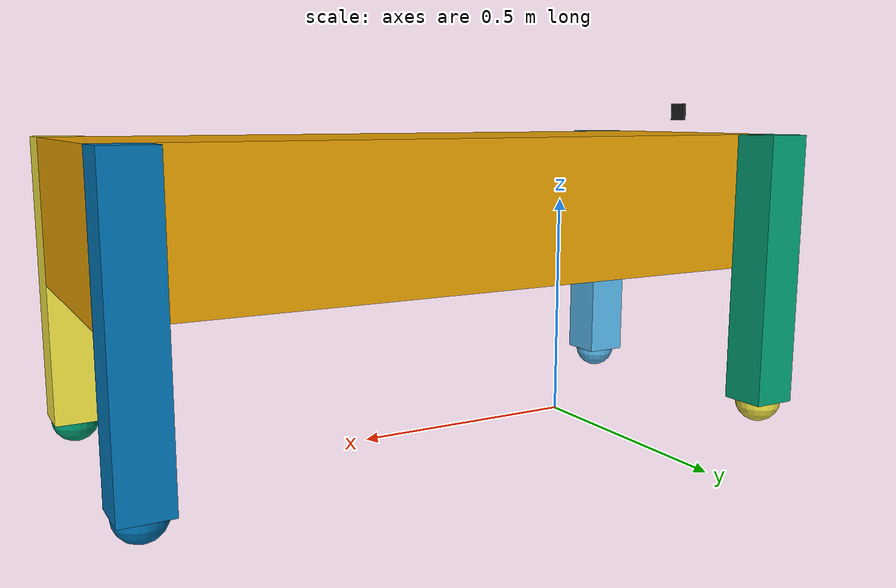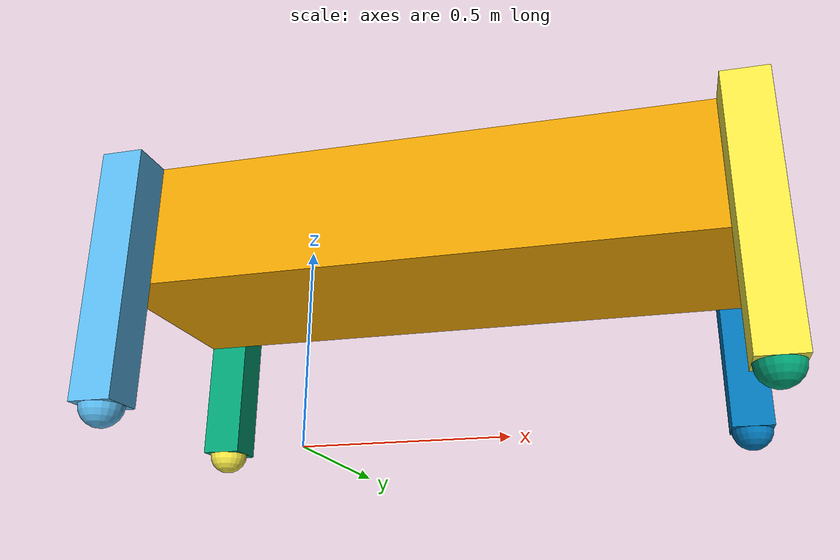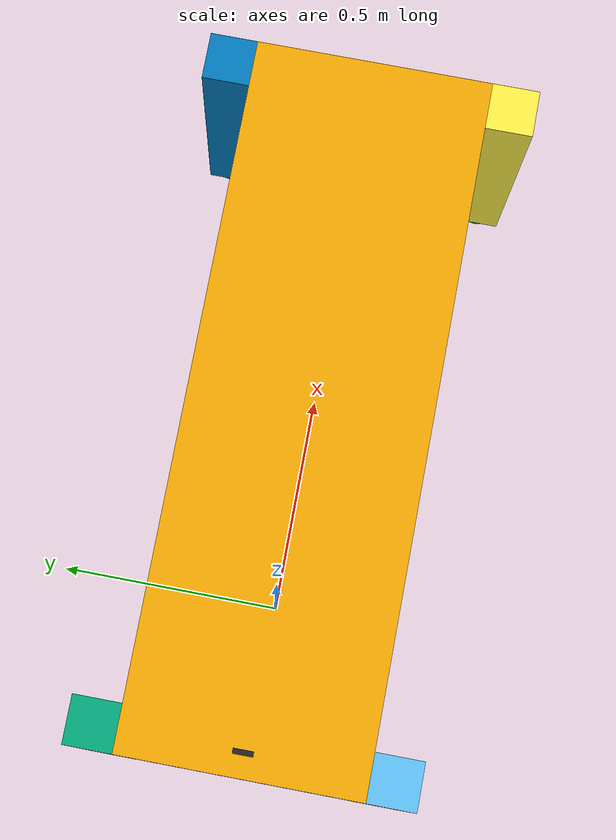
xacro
<?xml version="1.0"?>

<robot name="zwmvp" xmlns:xacro="http://www.ros.org/wiki/xacro">

  <!-- Import all Gazebo-customization elements, including Gazebo colors -->
  <xacro:include filename="$(find zwmvp_description)/urdf/zwmvp.gazebo" />

	<!-- body -->
	<xacro:include filename="$(find zwmvp_description)/urdf/zwmvp_body.xacro" />
	<!-- let -->
	<xacro:include filename="$(find zwmvp_description)/urdf/zwmvp_leg.xacro" />
	<!-- foot -->
	<xacro:include filename="$(find zwmvp_description)/urdf/zwmvp_foot.xacro" />
	<!-- shoe -->
	<xacro:include filename="$(find zwmvp_description)/urdf/zwmvp_shoe.xacro" />
	<!-- camera -->
	<xacro:include filename="$(find zwmvp_description)/urdf/zwmvp_camera.xacro" />
	<!-- transmission -->
	<xacro:include filename="$(find zwmvp_description)/urdf/zwmvp_transmission.xacro" />

  <xacro:usb_camera prefix="camera"/>

</robot>

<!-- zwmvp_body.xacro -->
<robot name="zwmvp" xmlns:xacro="http://www.ros.org/wiki/xacro">

  <xacro:property name="body_box_size"	value="1.5 0.5 0.3"/>
  <xacro:property name="damping" 	value="0.7"/>

  <link name="body">
    <inertial>
      <mass value="5"/>
      <origin rpy="0 0 0" xyz="0 0 0"/>
      <inertia ixx="0.166667" ixy="0" ixz="0" iyy="0.166667" iyz="0" izz="0.166667"/>
    </inertial>
    <collision name="pig_dog__collision">
      <origin rpy="0 0 0" xyz="0.35 0   0.5"/>
      <geometry>
        <box size="${body_box_size}"/>
      </geometry>
    </collision>
    <visual name="pig_dog__visual">
      <origin rpy="0 0 0" xyz="0.35 0   0.5"/>
      <geometry>
        <box size="${body_box_size}"/>
      </geometry>
    </visual>
  </link>

  <joint name="body_lf_joint" type="continuous">
    <parent link="body"/>
    <child link="left_front_leg"/>
    <origin rpy="0 0 0" xyz="-0.35 -0.3   0.65"/>
    <axis xyz="0 1 0"/>
    <dynamics damping="${damping}"/>
  </joint>

  <joint name="body_rf_joint" type="continuous">
    <parent link="body"/>
    <child link="right_front_leg"/>
    <origin rpy="0 0 0" xyz="-0.35  0.3   0.65"/>
    <axis xyz="0 -1  0"/>
    <dynamics damping="${damping}"/>
  </joint>

  <joint name="body_lb_joint" type="continuous">
    <parent link="body"/>
    <child link="left_back_leg"/>
    <origin rpy="0 0 0" xyz="1.05 -0.3   0.65"/>
    <axis xyz="0 1 0"/>
    <dynamics damping="${damping}"/>
  </joint>

  <joint name="body_rb_joint" type="continuous">
    <parent link="body"/>
    <child link="right_back_leg"/>
    <origin rpy="0 0 0" xyz="1.05 0.3  0.65"/>
    <axis xyz="0 -1  0"/>
    <dynamics damping="${damping}"/>
  </joint>

</robot>

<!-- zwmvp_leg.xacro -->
<robot name="zwmvp" xmlns:xacro="http://www.ros.org/wiki/xacro">

  <xacro:property name="leg_mass" value="0.5"/>
  <xacro:property name="leg_origin_xyz" value="0  0  -0.3"/>
  <xacro:property name="leg_box_size"	value="0.1 0.1 0.6"/>
  <xacro:property name="joint_foot_origin_xyz" value="0   0  -0.6"/>

  <!-- link -->
  <link name="left_front_leg">
    <inertial>
      <mass value="${leg_mass}"/>
      <origin rpy="0 0 0" xyz="0 0 0"/>
      <inertia ixx="0.166667" ixy="0" ixz="0" iyy="0.166667" iyz="0" izz="0.166667"/>
    </inertial>
    <collision name="zwmvp__collision">
      <origin rpy="0 0 0" xyz="${leg_origin_xyz}"/>
      <geometry>
        <box size="${leg_box_size}"/>
      </geometry>
    </collision>
    <visual name="zwmvp__visual">
      <origin rpy="0 0 0" xyz="${leg_origin_xyz}"/>
      <geometry>
        <box size="${leg_box_size}"/>
      </geometry>
    </visual>
  </link>
  <link name="right_front_leg">
    <inertial>
      <mass value="${leg_mass}"/>
      <origin rpy="0 0 0" xyz="0 0 0"/>
      <inertia ixx="0.166667" ixy="0" ixz="0" iyy="0.166667" iyz="0" izz="0.166667"/>
    </inertial>
    <collision name="zwmvp__collision">
      <origin rpy="0 0 0" xyz="${leg_origin_xyz}"/>
      <geometry>
        <box size="${leg_box_size}"/>
      </geometry>
    </collision>
    <visual name="zwmvp__visual">
      <origin rpy="0 0 0" xyz="${leg_origin_xyz}"/>
      <geometry>
        <box size="${leg_box_size}"/>
      </geometry>
    </visual>
  </link>
  <link name="left_back_leg">
    <inertial>
      <mass value="${leg_mass}"/>
      <origin rpy="0 0 0" xyz="0 0 0"/>
      <inertia ixx="0.166667" ixy="0" ixz="0" iyy="0.166667" iyz="0" izz="0.166667"/>
    </inertial>
    <collision name="zwmvp__collision">
      <origin rpy="0 0 0" xyz="${leg_origin_xyz}"/>
      <geometry>
        <box size="${leg_box_size}"/>
      </geometry>
    </collision>
    <visual name="zwmvp__visual">
      <origin rpy="0 0 0" xyz="${leg_origin_xyz}"/>
      <geometry>
        <box size="${leg_box_size}"/>
      </geometry>
    </visual>
  </link>
  <link name="right_back_leg">
    <inertial>
      <mass value="${leg_mass}"/>
      <origin rpy="0 0 0" xyz="0 0 0"/>
      <inertia ixx="0.166667" ixy="0" ixz="0" iyy="0.166667" iyz="0" izz="0.166667"/>
    </inertial>
    <collision name="zwmvp__collision">
      <origin rpy="0 0 0" xyz="${leg_origin_xyz}"/>
      <geometry>
        <box size="${leg_box_size}"/>
      </geometry>
    </collision>
    <visual name="zwmvp__visual">
      <origin rpy="0 0 0" xyz="${leg_origin_xyz}"/>
      <geometry>
        <box size="${leg_box_size}"/>
      </geometry>
    </visual>
  </link>

  <!-- joint -->
  <joint name="lf_leg_foot_joint" type="prismatic">
    <parent link="left_front_leg"/>
    <child link="left_front_foot"/>
    <origin rpy="0 0 0" xyz="${joint_foot_origin_xyz}"/>
    <axis xyz="0  0 -1"/>
    <limit effort="1e10" lower="0" upper="0.5" velocity="10"/>
  </joint>

  <joint name="rf_leg_foot_joint" type="prismatic">
    <parent link="right_front_leg"/>
    <child link="right_front_foot"/>
    <origin rpy="0 0 0" xyz="${joint_foot_origin_xyz}"/>
    <axis xyz="0  0 -1"/>
    <limit effort="1e10" lower="0" upper="0.5" velocity="10"/>
  </joint>

  <joint name="lb_leg_foot_joint" type="prismatic">
    <parent link="left_back_leg"/>
    <child link="left_back_foot"/>
    <origin rpy="0 0 0" xyz="${joint_foot_origin_xyz}"/>
    <axis xyz="0  0 -1"/>
    <limit effort="1e10" lower="0" upper="0.5" velocity="10"/>
  </joint>

  <joint name="rb_leg_foot_joint" type="prismatic">
    <parent link="right_back_leg"/>
    <child link="right_back_foot"/>
    <origin rpy="0 0 0" xyz="${joint_foot_origin_xyz}"/>
    <axis xyz="0  0 -1"/>
    <limit effort="1e10" lower="0" upper="0.5" velocity="10"/>
  </joint>

</robot>

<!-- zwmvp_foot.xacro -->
<robot name="zwmvp" xmlns:xacro="http://www.ros.org/wiki/xacro">

  <xacro:property name="foot_mass" value="0.2"/>
  <xacro:property name="foot_origin_xyz" value="0  0  0.25"/>
  <xacro:property name="foot_cylinder_length" value="0.5"/>
  <xacro:property name="foot_cylinder_radius" value="0.025"/>

  <!-- link -->
  <link name="left_front_foot">
    <inertial>
      <mass value="${foot_mass}"/>
      <origin rpy="0 0 0" xyz="0 0 0"/>
      <inertia ixx="0.145833" ixy="0" ixz="0" iyy="0.145833" iyz="0" izz="0.125"/>
    </inertial>
    <collision name="zwmvp__collision">
      <origin rpy="0 0 0" xyz="${foot_origin_xyz}"/>
      <geometry>
        <cylinder length="${foot_cylinder_length}" radius="${foot_cylinder_radius}"/>
      </geometry>
    </collision>
    <visual name="zwmvp__visual">
      <origin rpy="0 0 0" xyz="${foot_origin_xyz}"/>
      <geometry>
        <cylinder length="${foot_cylinder_length}" radius="${foot_cylinder_radius}"/>
      </geometry>
    </visual>
  </link>
  <link name="right_front_foot">
    <inertial>
      <mass value="${foot_mass}"/>
      <origin rpy="0 0 0" xyz="0 0 0"/>
      <inertia ixx="0.145833" ixy="0" ixz="0" iyy="0.145833" iyz="0" izz="0.125"/>
    </inertial>
    <collision name="zwmvp__collision">
      <origin rpy="0 0 0" xyz="${foot_origin_xyz}"/>
      <geometry>
        <cylinder length="${foot_cylinder_length}" radius="${foot_cylinder_radius}"/>
      </geometry>
    </collision>
    <visual name="zwmvp__visual">
      <origin rpy="0 0 0" xyz="${foot_origin_xyz}"/>
      <geometry>
        <cylinder length="${foot_cylinder_length}" radius="${foot_cylinder_radius}"/>
      </geometry>
    </visual>
  </link>
  <link name="left_back_foot">
    <inertial>
      <mass value="${foot_mass}"/>
      <origin rpy="0 0 0" xyz="0 0 0"/>
      <inertia ixx="0.145833" ixy="0" ixz="0" iyy="0.145833" iyz="0" izz="0.125"/>
    </inertial>
    <collision name="zwmvp__collision">
      <origin rpy="0 0 0" xyz="${foot_origin_xyz}"/>
      <geometry>
        <cylinder length="${foot_cylinder_length}" radius="${foot_cylinder_radius}"/>
      </geometry>
    </collision>
    <visual name="zwmvp__visual">
      <origin rpy="0 0 0" xyz="${foot_origin_xyz}"/>
      <geometry>
        <cylinder length="${foot_cylinder_length}" radius="${foot_cylinder_radius}"/>
      </geometry>
    </visual>
  </link>
  <link name="right_back_foot">
    <inertial>
      <mass value="${foot_mass}"/>
      <origin rpy="0 0 0" xyz="0 0 0"/>
      <inertia ixx="0.145833" ixy="0" ixz="0" iyy="0.145833" iyz="0" izz="0.125"/>
    </inertial>
    <collision name="zwmvp__collision">
      <origin rpy="0 0 0" xyz="${foot_origin_xyz}"/>
      <geometry>
        <cylinder length="${foot_cylinder_length}" radius="${foot_cylinder_radius}"/>
      </geometry>
    </collision>
    <visual name="zwmvp__visual">
      <origin rpy="0 0 0" xyz="${foot_origin_xyz}"/>
      <geometry>
        <cylinder length="${foot_cylinder_length}" radius="${foot_cylinder_radius}"/>
      </geometry>
    </visual>
  </link>

  <!-- joint -->
  <joint name="lf_foot_shoe_joint" type="fixed">
    <parent link="left_front_foot"/>
    <child link="left_front_shoe"/>
    <origin rpy="0 0 0" xyz="0   0  0"/>
    <axis xyz="0 0 1"/>
  </joint>

  <joint name="rf_foot_shoe_joint" type="fixed">
    <parent link="right_front_foot"/>
    <child link="right_front_shoe"/>
    <origin rpy="0 0 0" xyz="0   0  0"/>
    <axis xyz="0 0 1"/>
  </joint>

  <joint name="lb_foot_shoe_joint" type="fixed">
    <parent link="left_back_foot"/>
    <child link="left_back_shoe"/>
    <origin rpy="0 0 0" xyz="0  0  0"/>
    <axis xyz="0 0 1"/>
  </joint>

  <joint name="rb_foot_shoe_joint" type="fixed">
    <parent link="right_back_foot"/>
    <child link="right_back_shoe"/>
    <origin rpy="0 0 0" xyz="0   0  0"/>
    <axis xyz="0 0 1"/>
  </joint>

</robot>

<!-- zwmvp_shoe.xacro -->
<robot name="zwmvp" xmlns:xacro="http://www.ros.org/wiki/xacro">

  <xacro:property name="shoe_mass" value="0.1"/>
  <xacro:property name="shoe_radius"  value="0.05"/>

  <link name="left_front_shoe">
    <inertial>
      <mass value="${shoe_mass}"/>
      <origin rpy="0 0 0" xyz="0 0 0"/>
      <inertia ixx="0.1" ixy="0" ixz="0" iyy="0.1" iyz="0" izz="0.1"/>
    </inertial>
    <collision name="zwmvp__collision">
      <origin rpy="0 0 0" xyz="0   0   0"/>
      <geometry>
        <sphere radius="${shoe_radius}"/>
      </geometry>
    </collision>
    <visual name="zwmvp__visual">
      <origin rpy="0 0 0" xyz="0   0   0"/>
      <geometry>
        <sphere radius="${shoe_radius}"/>
      </geometry>
    </visual>
  </link>

  <link name="left_back_shoe">
    <inertial>
      <mass value="${shoe_mass}"/>
      <origin rpy="0 0 0" xyz="0 0 0"/>
      <inertia ixx="0.1" ixy="0" ixz="0" iyy="0.1" iyz="0" izz="0.1"/>
    </inertial>
    <collision name="zwmvp__collision">
      <origin rpy="0 0 0" xyz="0   0   0"/>
      <geometry>
        <sphere radius="${shoe_radius}"/>
      </geometry>
    </collision>
    <visual name="zwmvp__visual">
      <origin rpy="0 0 0" xyz="0   0   0"/>
      <geometry>
        <sphere radius="${shoe_radius}"/>
      </geometry>
    </visual>
  </link>

  <link name="right_front_shoe">
    <inertial>
      <mass value="${shoe_mass}"/>
      <origin rpy="0 0 0" xyz="0 0 0"/>
      <inertia ixx="0.1" ixy="0" ixz="0" iyy="0.1" iyz="0" izz="0.1"/>
    </inertial>
    <collision name="zwmvp__collision">
      <origin rpy="0 0 0" xyz="0   0   0"/>
      <geometry>
        <sphere radius="${shoe_radius}"/>
      </geometry>
    </collision>
    <visual name="zwmvp__visual">
      <origin rpy="0 0 0" xyz="0   0   0"/>
      <geometry>
        <sphere radius="${shoe_radius}"/>
      </geometry>
    </visual>
  </link>

  <link name="right_back_shoe">
    <inertial>
      <mass value="${shoe_mass}"/>
      <origin rpy="0 0 0" xyz="0 0 0"/>
      <inertia ixx="0.1" ixy="0" ixz="0" iyy="0.1" iyz="0" izz="0.1"/>
    </inertial>
    <collision name="zwmvp__collision">
      <origin rpy="0 0 0" xyz="0   0   0"/>
      <geometry>
        <sphere radius="${shoe_radius}"/>
      </geometry>
    </collision>
    <visual name="zwmvp__visual">
      <origin rpy="0 0 0" xyz="0   0   0"/>
      <geometry>
        <sphere radius="${shoe_radius}"/>
      </geometry>
    </visual>
  </link>

</robot>

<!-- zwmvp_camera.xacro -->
<robot xmlns:xacro="http://www.ros.org/wiki/xacro" name="camera">

    <xacro:macro name="usb_camera" params="prefix:=camera">

  <joint name="camera" type="fixed">
    <parent link="body"/>
    <child link="${prefix}_link"/>
    <origin rpy="0 0 3.14" xyz="-0.35 0 0.7"/>
  </joint>

        <!-- Create laser reference frame -->
        <link name="${prefix}_link">
            <inertial>
                <mass value="0.1" />
                <origin xyz="0 0 0" />
                <inertia ixx="0.01" ixy="0.0" ixz="0.0"
                         iyy="0.01" iyz="0.0"
                         izz="0.01" />
            </inertial>

            <visual>
                <origin xyz=" 0 0 0 " rpy="0 0 0" />
                <geometry>
                    <box size="0.01 0.04 0.04" />
                </geometry>
                <material name="black"/>
            </visual>

            <collision>
                <origin xyz="0.0 0.0 0.0" rpy="0 0 0" />
                <geometry>
                    <box size="0.01 0.04 0.04" />
                </geometry>
            </collision>
        </link>
        <gazebo reference="${prefix}_link">
            <material>Gazebo/Black</material>
        </gazebo>

        <gazebo reference="${prefix}_link">
            <sensor type="camera" name="camera_node">
                <update_rate>30.0</update_rate>
                <camera name="head">
                    <horizontal_fov>1.3962634</horizontal_fov>
                    <image>
                        <width>1280</width>
                        <height>720</height>
                        <format>R8G8B8</format>
                    </image>
                    <clip>
                        <near>0.02</near>
                        <far>300</far>
                    </clip>
                    <noise>
                        <type>gaussian</type>
                        <mean>0.0</mean>
                        <stddev>0.007</stddev>
                    </noise>
                </camera>
                <plugin name="gazebo_camera" filename="libgazebo_ros_camera.so">
                    <alwaysOn>true</alwaysOn>
                    <updateRate>0.0</updateRate>
                    <cameraName>/camera</cameraName>
                    <imageTopicName>image_raw</imageTopicName>
                    <cameraInfoTopicName>camera_info</cameraInfoTopicName>
                    <frameName>camera_link</frameName>
                    <hackBaseline>0.07</hackBaseline>
                    <distortionK1>0.0</distortionK1>
                    <distortionK2>0.0</distortionK2>
                    <distortionK3>0.0</distortionK3>
                    <distortionT1>0.0</distortionT1>
                    <distortionT2>0.0</distortionT2>
                </plugin>
            </sensor>
        </gazebo>

    </xacro:macro>
</robot>
